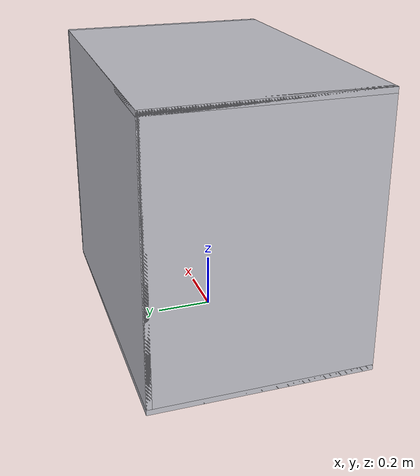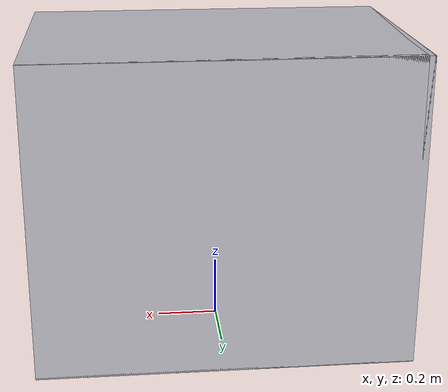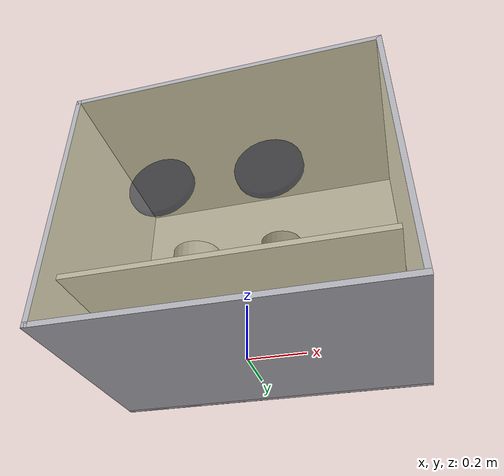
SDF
<?xml version="1.0"?>
<sdf version="1.9">

  <model name="simplified_glovebox">

    <static>true</static>

    <link name="body">

      <!-- Floor -->
      <visual name="shell_floor_visual">
        <pose>0 0 0.01 0 0 0</pose>
        <geometry>
          <box>
            <size>1.2 0.8 0.02</size>
          </box>
        </geometry>
        <material>
          <ambient>0.75 0.75 0.78 1</ambient>
          <diffuse>0.75 0.75 0.78 1</diffuse>
          <specular>0.9 0.9 0.9 1</specular>
          <pbr>
            <metal>
              <metalness>0.35</metalness>
              <roughness>0.45</roughness>
            </metal>
          </pbr>
        </material>
      </visual>

      <collision name="shell_floor_collision">
        <pose>0 0 0.01 0 0 0</pose>
        <geometry>
          <box>
            <size>1.2 0.8 0.02</size>
          </box>
        </geometry>
      </collision>

      <!-- Lid -->
      <visual name="shell_lid_visual">
        <pose>0 0 0.99 0 0 0</pose>
        <geometry>
          <box>
            <size>1.2 0.8 0.02</size>
          </box>
        </geometry>
        <material>
          <ambient>0.75 0.75 0.78 1</ambient>
          <diffuse>0.75 0.75 0.78 1</diffuse>
          <specular>0.9 0.9 0.9 1</specular>
          <pbr>
            <metal>
              <metalness>0.35</metalness>
              <roughness>0.45</roughness>
            </metal>
          </pbr>
        </material>
      </visual>

      <collision name="shell_lid_collision">
        <pose>0 0 0.99 0 0 0</pose>
        <geometry>
          <box>
            <size>1.2 0.8 0.02</size>
          </box>
        </geometry>
      </collision>

      <!-- Back wall -->
      <visual name="shell_back_visual">
        <pose>0 0.39 0.5 0 0 0</pose>
        <geometry>
          <box>
            <size>1.2 0.02 1.0</size>
          </box>
        </geometry>
        <material>
          <ambient>0.75 0.75 0.78 1</ambient>
          <diffuse>0.75 0.75 0.78 1</diffuse>
          <specular>0.9 0.9 0.9 1</specular>
          <pbr>
            <metal>
              <metalness>0.35</metalness>
              <roughness>0.45</roughness>
            </metal>
          </pbr>
        </material>
      </visual>

      <collision name="shell_back_collision">
        <pose>0 0.39 0.5 0 0 0</pose>
        <geometry>
          <box>
            <size>1.2 0.02 1.0</size>
          </box>
        </geometry>
      </collision>

      <!-- Left wall -->
      <visual name="shell_left_visual">
        <pose>-0.59 0 0.5 0 0 0</pose>
        <geometry>
          <box>
            <size>0.02 0.8 1.0</size>
          </box>
        </geometry>
        <material>
          <ambient>0.75 0.75 0.78 1</ambient>
          <diffuse>0.75 0.75 0.78 1</diffuse>
          <specular>0.9 0.9 0.9 1</specular>
          <pbr>
            <metal>
              <metalness>0.35</metalness>
              <roughness>0.45</roughness>
            </metal>
          </pbr>
        </material>
      </visual>

      <collision name="shell_left_collision">
        <pose>-0.59 0 0.5 0 0 0</pose>
        <geometry>
          <box>
            <size>0.02 0.8 1.0</size>
          </box>
        </geometry>
      </collision>

      <!-- Right wall -->
      <visual name="shell_right_visual">
        <pose>0.59 0 0.5 0 0 0</pose>
        <geometry>
          <box>
            <size>0.02 0.8 1.0</size>
          </box>
        </geometry>
        <material>
          <ambient>0.75 0.75 0.78 1</ambient>
          <diffuse>0.75 0.75 0.78 1</diffuse>
          <specular>0.9 0.9 0.9 1</specular>
          <pbr>
            <metal>
              <metalness>0.35</metalness>
              <roughness>0.45</roughness>
            </metal>
          </pbr>
        </material>
      </visual>

      <collision name="shell_right_collision">
        <pose>0.59 0 0.5 0 0 0</pose>
        <geometry>
          <box>
            <size>0.02 0.8 1.0</size>
          </box>
        </geometry>
      </collision>

      <visual name="front_window">
        <pose>0 -0.39 0.5 0 0 0</pose>
        <geometry>
          <box>
            <size>1.16 0.02 0.96</size>
          </box>
        </geometry>
        <material>
          <ambient>0.75 0.70 0.45 0.45</ambient>
          <diffuse>0.75 0.70 0.45 0.45</diffuse>
          <specular>0.1 0.1 0.1 1</specular>
        </material>
        <transparency>0.55</transparency>
      </visual>

      <collision name="front_window_collision">
        <pose>0 -0.39 0.5 0 0 0</pose>
        <geometry>
          <box>
            <size>1.16 0.02 0.96</size>
          </box>
        </geometry>
      </collision>

      <!-- Internal work surface -->
      <visual name="worktop">
        <pose>0 0 0.20 0 0 0</pose>
        <geometry>
          <box>
            <size>1.10 0.70 0.02</size>
          </box>
        </geometry>
        <material>
          <ambient>0.82 0.82 0.85 1</ambient>
          <diffuse>0.82 0.82 0.85 1</diffuse>
          <specular>1 1 1 1</specular>
          <pbr>
            <metal>
              <metalness>0.45</metalness>
              <roughness>0.3</roughness>
            </metal>
          </pbr>
        </material>
      </visual>

      <collision name="worktop_collision">
        <pose>0 0 0.20 0 0 0</pose>
        <geometry>
          <box>
            <size>1.10 0.70 0.02</size>
          </box>
        </geometry>
      </collision>

      <!-- Left glove port -->
      <visual name="glove_port_left">
        <pose>-0.18 -0.401 0.45 1.5708 0 0</pose>
        <geometry>
          <cylinder>
            <radius>0.11</radius>
            <length>0.05</length>
          </cylinder>
        </geometry>
        <material>
          <ambient>0.1 0.1 0.1 0.45</ambient>
          <diffuse>0.1 0.1 0.1 0.45</diffuse>
        </material>
        <transparency>0.55</transparency>
      </visual>

      <!-- Right glove port -->
      <visual name="glove_port_right">
        <pose>0.18 -0.401 0.45 1.5708 0 0</pose>
        <geometry>
          <cylinder>
            <radius>0.11</radius>
            <length>0.05</length>
          </cylinder>
        </geometry>
        <material>
          <ambient>0.1 0.1 0.1 0.45</ambient>
          <diffuse>0.1 0.1 0.1 0.45</diffuse>
        </material>
        <transparency>0.55</transparency>
      </visual>

      <!-- Side entry port -->
      <visual name="entry_port">
        <pose>0.601 0.0 0.50 0 1.5708 0</pose>
        <geometry>
          <cylinder>
            <radius>0.15</radius>
            <length>0.05</length>
          </cylinder>
        </geometry>
        <material>
          <ambient>0.35 0.35 0.38 0.45</ambient>
          <diffuse>0.35 0.35 0.38 0.45</diffuse>
          <specular>0.8 0.8 0.8 1</specular>
          <pbr>
            <metal>
              <metalness>0.4</metalness>
              <roughness>0.45</roughness>
            </metal>
          </pbr>
        </material>
        <transparency>0.55</transparency>
      </visual>

      <!-- Drum 1 -->
      <visual name="drum1">
        <pose>-0.20 0.00 0.33 0 0 0</pose>
        <geometry>
          <cylinder>
            <radius>0.09</radius>
            <length>0.25</length>
          </cylinder>
        </geometry>
        <material>
          <ambient>0.65 0.65 0.68 1</ambient>
          <diffuse>0.65 0.65 0.68 1</diffuse>
          <specular>0.9 0.9 0.9 1</specular>
          <pbr>
            <metal>
              <metalness>0.4</metalness>
              <roughness>0.4</roughness>
            </metal>
          </pbr>
        </material>
      </visual>

      <collision name="drum1_collision">
        <pose>-0.20 0.00 0.33 0 0 0</pose>
        <geometry>
          <cylinder>
            <radius>0.09</radius>
            <length>0.25</length>
          </cylinder>
        </geometry>
      </collision>

      <!-- Drum 2 -->
      <visual name="drum2">
        <pose>0.15 -0.10 0.29 0 0 0</pose>
        <geometry>
          <cylinder>
            <radius>0.07</radius>
            <length>0.18</length>
          </cylinder>
        </geometry>
        <material>
          <ambient>0.4 0.41 0.44 1</ambient>
          <diffuse>0.4 0.41 0.44 1</diffuse>
          <specular>0.8 0.8 0.8 1</specular>
          <pbr>
            <metal>
              <metalness>0.4</metalness>
              <roughness>0.45</roughness>
            </metal>
          </pbr>
        </material>
      </visual>

      <collision name="drum2_collision">
        <pose>0.15 -0.10 0.29 0 0 0</pose>
        <geometry>
          <cylinder>
            <radius>0.07</radius>
            <length>0.18</length>
          </cylinder>
        </geometry>
      </collision>

      <!-- Equipment box -->
      <visual name="equipment_box">
        <pose>0.32 0.15 0.30 0 0 0</pose>
        <geometry>
          <box>
            <size>0.18 0.12 0.18</size>
          </box>
        </geometry>
        <material>
          <ambient>0.5 0.52 0.55 1</ambient>
          <diffuse>0.5 0.52 0.55 1</diffuse>
          <specular>0.85 0.85 0.85 1</specular>
          <pbr>
            <metal>
              <metalness>0.35</metalness>
              <roughness>0.45</roughness>
            </metal>
          </pbr>
        </material>
      </visual>

      <collision name="equipment_box_collision">
        <pose>0.32 0.15 0.30 0 0 0</pose>
        <geometry>
          <box>
            <size>0.18 0.12 0.18</size>
          </box>
        </geometry>
      </collision>

      <!-- Pipe section -->
      <visual name="pipe">
        <pose>0.0 0.22 0.28 1.5708 0 0</pose>
        <geometry>
          <cylinder>
            <radius>0.05</radius>
            <length>0.15</length>
          </cylinder>
        </geometry>
        <material>
          <ambient>0.55 0.55 0.58 1</ambient>
          <diffuse>0.55 0.55 0.58 1</diffuse>
          <specular>0.9 0.9 0.9 1</specular>
          <pbr>
            <metal>
              <metalness>0.4</metalness>
              <roughness>0.35</roughness>
            </metal>
          </pbr>
        </material>
      </visual>

      <collision name="pipe_collision">
        <pose>0.0 0.22 0.28 1.5708 0 0</pose>
        <geometry>
          <cylinder>
            <radius>0.05</radius>
            <length>0.15</length>
          </cylinder>
        </geometry>
      </collision>

      <!-- Interior lights: mounted just under the lid, shining down onto the
           worktop so the enclosure interior is lit through the window -->
      <light type="spot" name="interior_light_left">
        <pose>-0.3 0.05 1.2 0 0 0</pose>
        <direction>0 0 -1</direction>
        <cast_shadows>false</cast_shadows>
        <diffuse>1 1 1 1</diffuse>
        <specular>0.6 0.6 0.6 1</specular>
        <intensity>8.0</intensity>
        <attenuation>
          <range>3.0</range>
          <constant>0.2</constant>
          <linear>0.2</linear>
          <quadratic>0.05</quadratic>
        </attenuation>
        <spot>
          <inner_angle>0.6</inner_angle>
          <outer_angle>1.0</outer_angle>
          <falloff>1.0</falloff>
        </spot>
      </light>

      <light type="spot" name="interior_light_right">
        <pose>0.3 0.05 1.2 0 0 0</pose>
        <direction>0 0 -1</direction>
        <cast_shadows>false</cast_shadows>
        <diffuse>1 1 1 1</diffuse>
        <specular>0.6 0.6 0.6 1</specular>
        <intensity>8.0</intensity>
        <attenuation>
          <range>3.0</range>
          <constant>0.2</constant>
          <linear>0.2</linear>
          <quadratic>0.05</quadratic>
        </attenuation>
        <spot>
          <inner_angle>0.6</inner_angle>
          <outer_angle>1.0</outer_angle>
          <falloff>1.0</falloff>
        </spot>
      </light>

    </link>

  </model>

</sdf>
